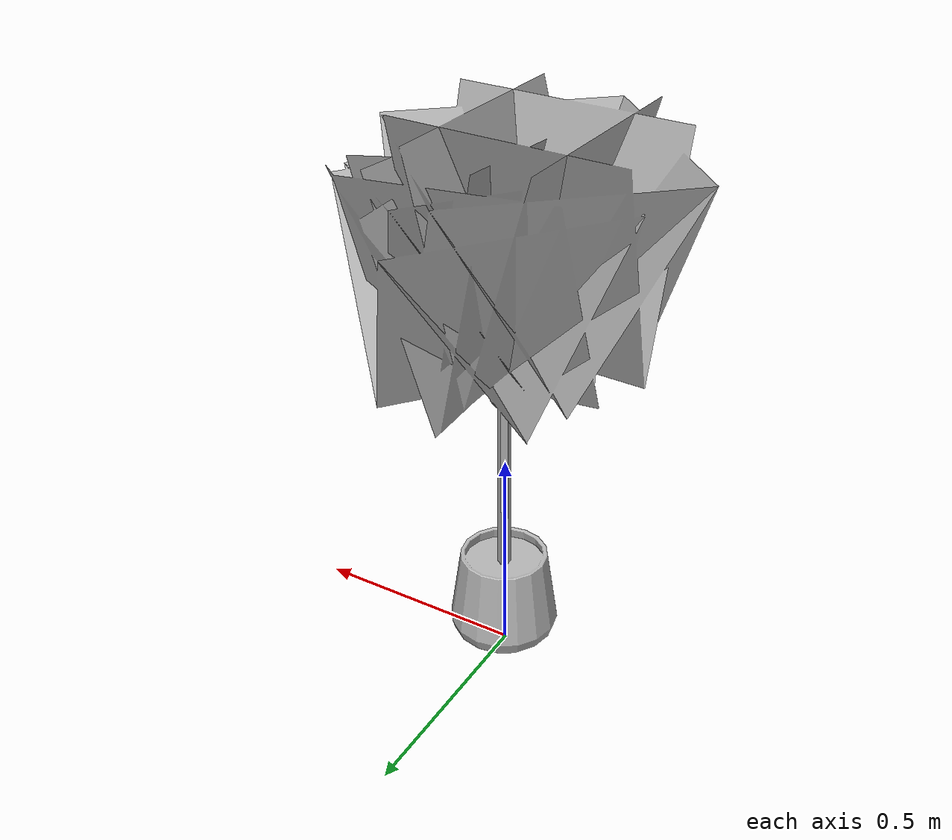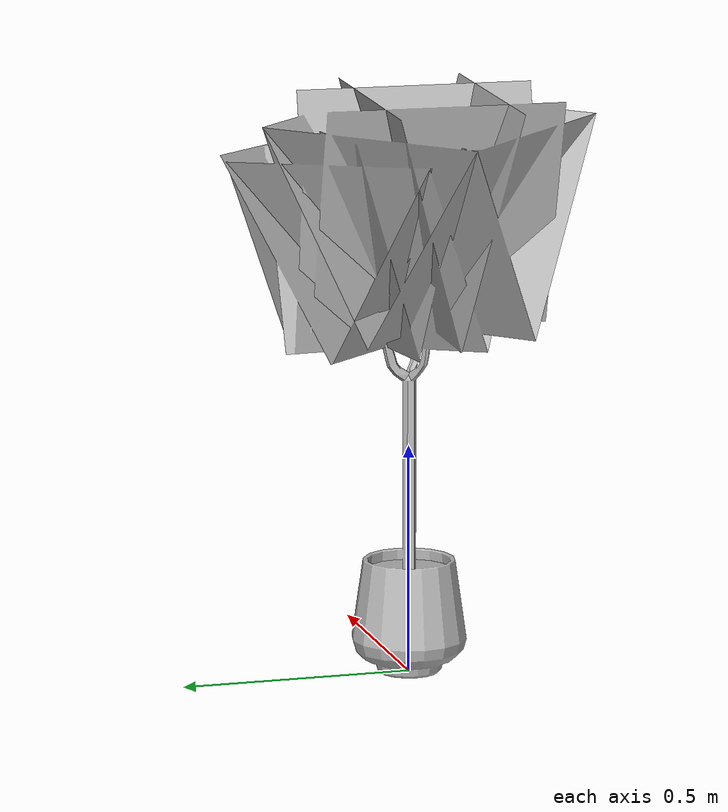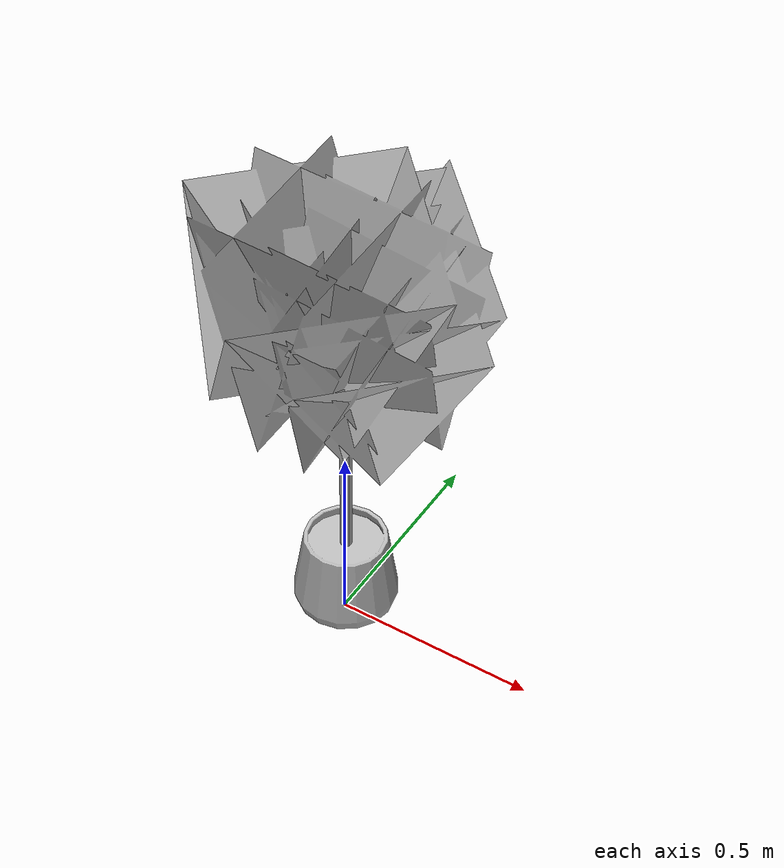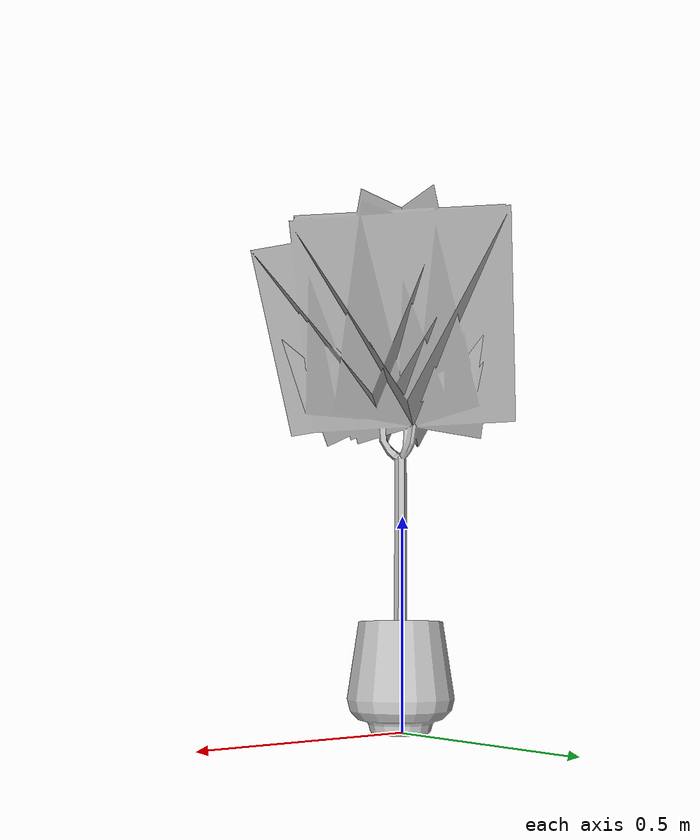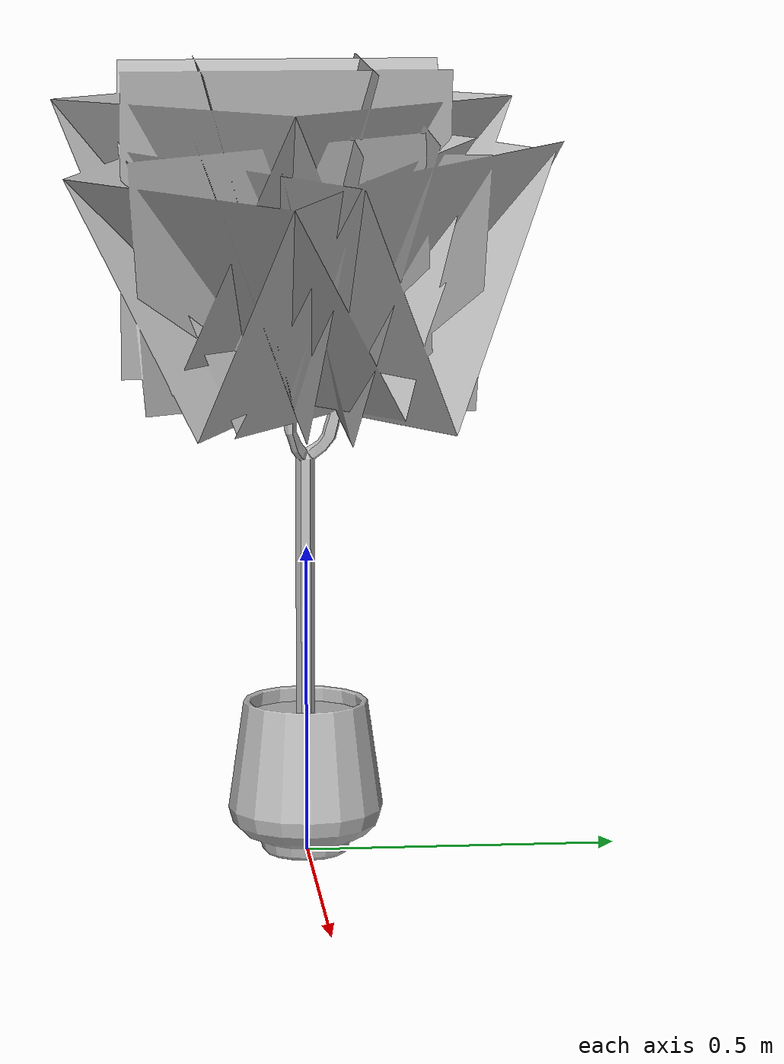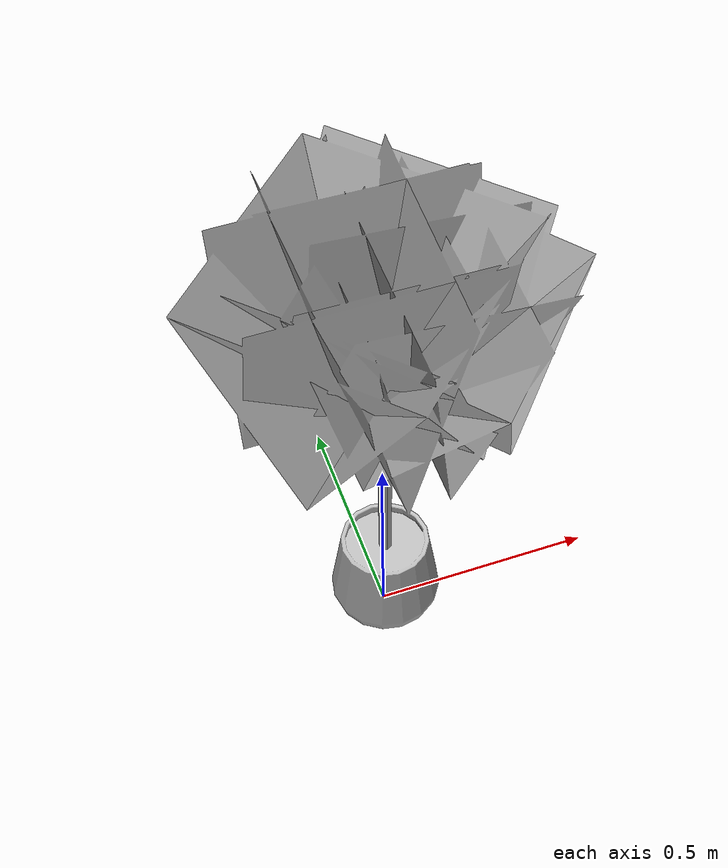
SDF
<?xml version='1.0'?>
<sdf version='1.4'>
  <model name='733'>
    <pose>0 0 0 0 0 0</pose>
    <static>true</static>
    <link name='link'>
      <collision name='collision'>
        <pose>0 0 0 0 0 0</pose>
        <geometry>
          <box>
            <size>0.837339 0.806826 2</size>
          </box>
        </geometry>
      </collision>
      <visual name='visual'>
        <pose>0 0 0 0 0 0</pose>
        <geometry>
          <mesh><uri>model://733/733.dae</uri></mesh>
        </geometry>
      </visual>
    </link>
  </model>
</sdf>
